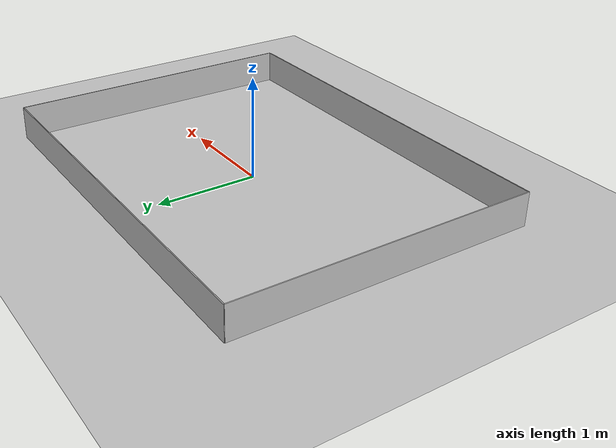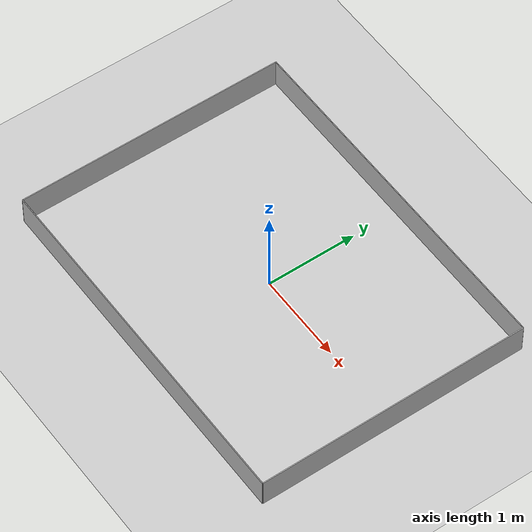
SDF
<?xml version="1.0" ?>
<sdf version="1.8">
  <world name="treebo_world">
    <physics name="1ms" type="ignored">
      <max_step_size>0.001</max_step_size>
      <real_time_factor>1.0</real_time_factor>
    </physics>

    <plugin filename="gz-sim-physics-system" name="gz::sim::systems::Physics"/>
    <plugin filename="gz-sim-sensors-system" name="gz::sim::systems::Sensors">
      <render_engine>ogre2</render_engine>
    </plugin>
    <plugin filename="gz-sim-user-commands-system" name="gz::sim::systems::UserCommands"/>
    <plugin filename="gz-sim-scene-broadcaster-system" name="gz::sim::systems::SceneBroadcaster"/>
    <plugin filename="gz-sim-imu-system" name="gz::sim::systems::Imu"/>

    <!-- 바닥 -->
    <include>
      <uri>model://ground_plane</uri>
    </include>

    <!-- 조명 -->
    <light type="directional" name="sun">
      <cast_shadows>false</cast_shadows>
      <pose>0 0 2 0 0 0</pose>
      <diffuse>1 1 1 1</diffuse>
      <specular>1 1 1 1</specular>
      <attenuation>
        <range>1000</range>
        <constant>1</constant>
        <linear>0</linear>
        <quadratic>0</quadratic>
      </attenuation>
      <direction>0 0 -1</direction>
    </light>

    <!-- 벽 4면 (순수 box만 사용) -->
    <model name="wall_front">
      <static>true</static>
      <pose>0 1.5 0.11 0 0 0</pose>
      <link name="link">
        <visual name="v">
          <geometry><box><size>4 0.01 0.44</size></box></geometry>
        </visual>
        <collision name="c">
          <geometry><box><size>4 0.01 0.44</size></box></geometry>
        </collision>
      </link>
    </model>

    <model name="wall_back">
      <static>true</static>
      <pose>0 -1.5 0.11 0 0 3.14</pose>
      <link name="link">
        <visual name="v">
          <geometry><box><size>4 0.01 0.44</size></box></geometry>
        </visual>
        <collision name="c">
          <geometry><box><size>4 0.01 0.44</size></box></geometry>
        </collision>
      </link>
    </model>

    <model name="wall_left">
      <static>true</static>
      <pose>-2 0 0.11 0 0 1.57</pose>
      <link name="link">
        <visual name="v">
          <geometry><box><size>3 0.01 0.44</size></box></geometry>
        </visual>
        <collision name="c">
          <geometry><box><size>3 0.01 0.44</size></box></geometry>
        </collision>
      </link>
    </model>

    <model name="wall_right">
      <static>true</static>
      <pose>2 0 0.11 0 0 -1.57</pose>
      <link name="link">
        <visual name="v">
          <geometry><box><size>3 0.01 0.44</size></box></geometry>
        </visual>
        <collision name="c">
          <geometry><box><size>3 0.01 0.44</size></box></geometry>
        </collision>
      </link>
    </model>
  </world>
</sdf>
